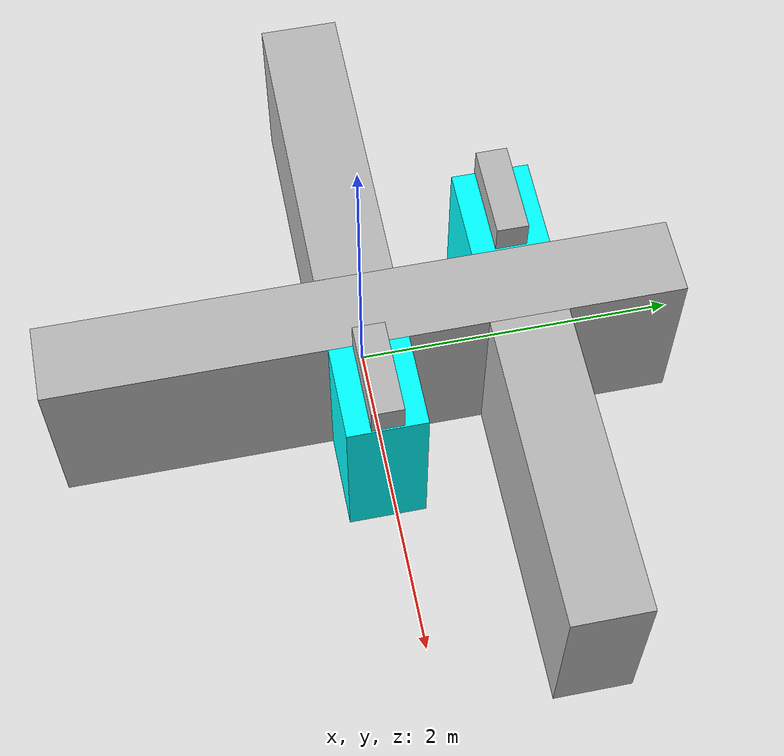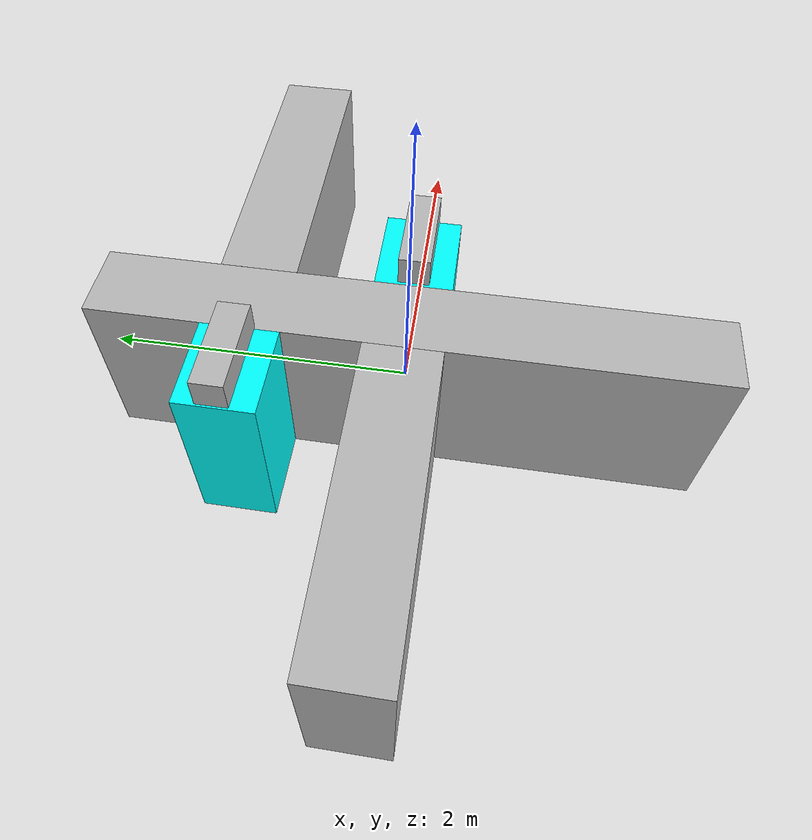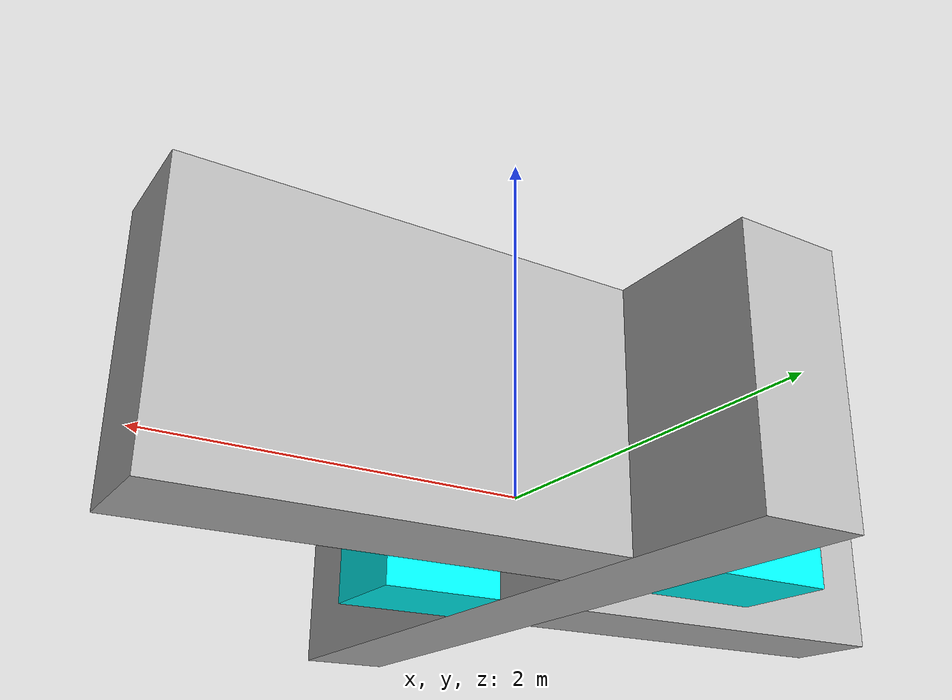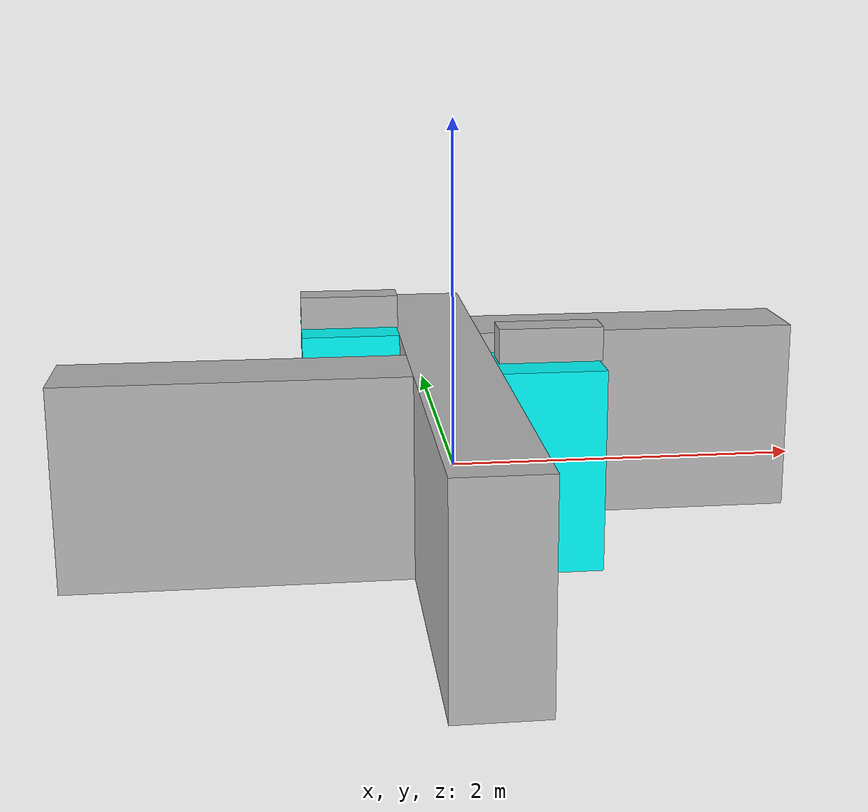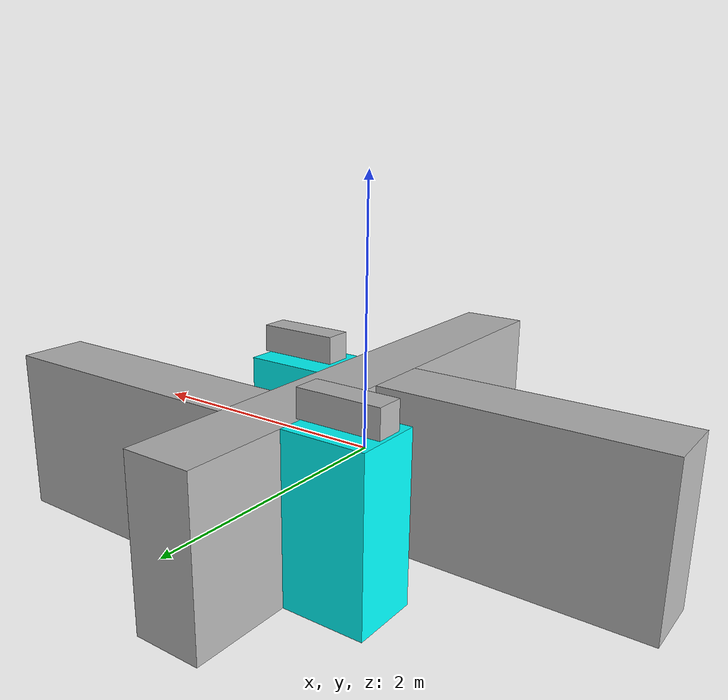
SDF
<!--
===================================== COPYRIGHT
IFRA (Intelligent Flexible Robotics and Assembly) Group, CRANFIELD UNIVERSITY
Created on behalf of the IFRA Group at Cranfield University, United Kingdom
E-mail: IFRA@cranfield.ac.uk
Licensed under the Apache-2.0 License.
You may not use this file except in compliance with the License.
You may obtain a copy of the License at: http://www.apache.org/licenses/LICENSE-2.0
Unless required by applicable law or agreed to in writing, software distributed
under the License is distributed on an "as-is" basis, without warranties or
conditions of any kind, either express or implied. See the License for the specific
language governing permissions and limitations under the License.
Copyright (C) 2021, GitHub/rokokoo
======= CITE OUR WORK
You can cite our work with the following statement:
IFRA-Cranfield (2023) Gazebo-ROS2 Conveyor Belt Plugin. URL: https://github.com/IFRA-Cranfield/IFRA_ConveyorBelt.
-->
<?xml version="1.0" ?>

<sdf version="1.4">

    <model name="conveyor_belt">
        <model name="conveyorbelt_fixed">

            <static>true</static>
            <link name="belt_visual">
                <inertial>
                    <mass>100.0</mass>
                    <inertia>                        <!-- inertias are tricky to compute -->
                        <!-- http://gazebosim.org/tutorials?tut=inertia&cat=build_robot -->
                        <ixx>45.152</ixx>                        <!-- for a box: ixx = 0.083 * mass * (y*y + z*z) -->
                        <ixy>0.0</ixy>                        <!-- for a box: ixy = 0 -->
                        <ixz>0.0</ixz>                        <!-- for a box: ixz = 0 -->
                        <iyy>14.027</iyy>                        <!-- for a box: iyy = 0.083 * mass * (x*x + z*z) -->
                        <iyz>0.0</iyz>                        <!-- for a box: iyz = 0 -->
                        <izz>35.275</izz>                        <!-- for a box: izz = 0.083 * mass * (x*x + y*y) -->
                    </inertia>
                </inertial>
                <collision name="collision">
                    <geometry>
                        <box>
                            <size>0.5 4 1.2</size>
                        </box>
                    </geometry>
                </collision>
                <visual name="visual">
                    <geometry>
                        <box>
                            <size>0.5 4 1.2</size>
                        </box>
                    </geometry>
                </visual>
            </link>

            <link name="belt_left_visual">
            <pose>-1.25 0 0 0 0 1.57</pose>
                <inertial>
                    <mass>100.0</mass>
                    <inertia>                        <!-- inertias are tricky to compute -->
                        <!-- http://gazebosim.org/tutorials?tut=inertia&cat=build_robot -->
                        <ixx>45.152</ixx>                        <!-- for a box: ixx = 0.083 * mass * (y*y + z*z) -->
                        <ixy>0.0</ixy>                        <!-- for a box: ixy = 0 -->
                        <ixz>0.0</ixz>                        <!-- for a box: ixz = 0 -->
                        <iyy>14.027</iyy>                        <!-- for a box: iyy = 0.083 * mass * (x*x + z*z) -->
                        <iyz>0.0</iyz>                        <!-- for a box: iyz = 0 -->
                        <izz>35.275</izz>                        <!-- for a box: izz = 0.083 * mass * (x*x + y*y) -->
                    </inertia>
                </inertial>
                <collision name="collision">
                    <geometry>
                        <box>
                            <size>0.5 2 1.2</size>
                        </box>
                    </geometry>
                </collision>
                <visual name="visual">
                    <geometry>
                        <box>
                            <size>0.5 2 1.2</size>
                        </box>
                    </geometry>
                </visual>
            </link>

            <link name="belt_right_visual">
            <pose>1.25 1 0 0 0 1.57</pose>
                <inertial>
                    <mass>100.0</mass>
                    <inertia>                        <!-- inertias are tricky to compute -->
                        <!-- http://gazebosim.org/tutorials?tut=inertia&cat=build_robot -->
                        <ixx>45.152</ixx>                        <!-- for a box: ixx = 0.083 * mass * (y*y + z*z) -->
                        <ixy>0.0</ixy>                        <!-- for a box: ixy = 0 -->
                        <ixz>0.0</ixz>                        <!-- for a box: ixz = 0 -->
                        <iyy>14.027</iyy>                        <!-- for a box: iyy = 0.083 * mass * (x*x + z*z) -->
                        <iyz>0.0</iyz>                        <!-- for a box: iyz = 0 -->
                        <izz>35.275</izz>                        <!-- for a box: izz = 0.083 * mass * (x*x + y*y) -->
                    </inertia>
                </inertial>
                <collision name="collision">
                    <geometry>
                        <box>
                            <size>0.5 2 1.2</size>
                        </box>
                    </geometry>
                </collision>
                <visual name="visual">
                    <geometry>
                        <box>
                            <size>0.5 2 1.2</size>
                        </box>
                    </geometry>
                </visual>
            </link>
        </model>

        <model name="belt_changer">
            <static>true</static>
            <link name="belt_changer_left">
            <pose>0.55 0 0 0 0 0</pose>
                <inertial>
                    <mass>100.0</mass>
                    <inertia>                        <!-- inertias are tricky to compute -->
                        <!-- http://gazebosim.org/tutorials?tut=inertia&cat=build_robot -->
                        <ixx>0</ixx>                        <!-- for a box: ixx = 0.083 * mass * (y*y + z*z) -->
                        <ixy>0.0</ixy>                        <!-- for a box: ixy = 0 -->
                        <ixz>0.0</ixz>                        <!-- for a box: ixz = 0 -->
                        <iyy>0</iyy>                        <!-- for a box: iyy = 0.083 * mass * (x*x + z*z) -->
                        <iyz>0.0</iyz>                        <!-- for a box: iyz = 0 -->
                        <izz>0</izz>                        <!-- for a box: izz = 0.083 * mass * (x*x + y*y) -->
                    </inertia>
                </inertial>
                <collision name="collision">
                    <geometry>
                        <box>
                            <size>0.6 0.5 1.2</size>
                        </box>
                    </geometry>
                </collision>
                <visual name="visual">
                    <geometry>
                        <box>
                            <size>0.6 0.5 1.2</size>
                        </box>
                    </geometry>
                    <material>
                        <ambient>0 0 0 0</ambient>
                        <diffuse>0 1 1 1</diffuse>
                        <specular>0.3 0.3 0.2 64</specular>
                        <emissive>0.1 0 0.1 1</emissive>
                    </material>
                </visual>
            </link>

            <link name="belt_changer_right">
            <pose>-0.55 1 0 0 0 0</pose>
                <inertial>
                    <mass>100.0</mass>
                    <inertia>                        <!-- inertias are tricky to compute -->
                        <!-- http://gazebosim.org/tutorials?tut=inertia&cat=build_robot -->
                        <ixx>0</ixx>                        <!-- for a box: ixx = 0.083 * mass * (y*y + z*z) -->
                        <ixy>0.0</ixy>                        <!-- for a box: ixy = 0 -->
                        <ixz>0.0</ixz>                        <!-- for a box: ixz = 0 -->
                        <iyy>0</iyy>                        <!-- for a box: iyy = 0.083 * mass * (x*x + z*z) -->
                        <iyz>0.0</iyz>                        <!-- for a box: iyz = 0 -->
                        <izz>0</izz>                        <!-- for a box: izz = 0.083 * mass * (x*x + y*y) -->
                    </inertia>
                </inertial>
                <collision name="collision">
                    <geometry>
                        <box>
                            <size>0.6 0.5 1.2</size>
                        </box>
                    </geometry>
                </collision>
                <visual name="visual">
                    <geometry>
                        <box>
                            <size>0.6 0.5 1.2</size>
                        </box>
                    </geometry>
                    <material>
                        <ambient>0 0 0 0</ambient>
                        <diffuse>0 1 1 1</diffuse>
                        <specular>0.3 0.3 0.2 64</specular>
                        <emissive>0.1 0 0.1 1</emissive>
                    </material>
                </visual>
            </link>
        </model>

        <model name="belt_changer_moving">

            <allow_auto_disable>0</allow_auto_disable>
            <static>false</static>

            <link name="belt_changer_left_moving">
            <pose>0.55 0 0.72 0 0 0</pose>
                <inertial>
                    <mass>100.0</mass>
                    <inertia>
                        <ixx>0.0</ixx>
                        <ixy>0.0</ixy>
                        <ixz>0.0</ixz>
                        <iyy>0.0</iyy>
                        <iyz>0.0</iyz>
                        <izz>0.0</izz>
                    </inertia>
                </inertial>
                <collision name="belt_collision">
                    <geometry>
                        <box>
                            <size>0.6 0.2 0.2</size>
                        </box>
                    </geometry>
                    <surface>
                        <friction>
                            <ode>
                                <mu>100.0</mu>
                                <mu2>100.0</mu2>
                            </ode>
                            <torsional>
                                <coefficient>1000.0</coefficient>
                                <patch_radius>0.1</patch_radius>
                            </torsional>
                        </friction>
                    </surface>
                </collision>

                <visual name="belt_left_visual">
                    <geometry>
                        <box>
                            <size>0.6 0.2 0.2</size>
                        </box>
                    </geometry>
                </visual>

            </link>

            <link name="belt_changer_right_moving">
            <pose>-0.55 1 0.72 0 0 0</pose>
                <inertial>
                    <mass>100.0</mass>
                    <inertia>
                        <ixx>0.0</ixx>
                        <ixy>0.0</ixy>
                        <ixz>0.0</ixz>
                        <iyy>0.0</iyy>
                        <iyz>0.0</iyz>
                        <izz>0.0</izz>
                    </inertia>
                </inertial>
                <collision name="belt_collision">
                    <geometry>
                        <box>
                            <size>0.6 0.2 0.2</size>
                        </box>
                    </geometry>
                    <surface>
                        <friction>
                            <ode>
                                <mu>100.0</mu>
                                <mu2>100.0</mu2>
                            </ode>
                            <torsional>
                                <coefficient>1000.0</coefficient>
                                <patch_radius>0.1</patch_radius>
                            </torsional>
                        </friction>
                    </surface>
                </collision>

                <visual name="belt_right_visual">
                    <geometry>
                        <box>
                            <size>0.6 0.2 0.2</size>
                        </box>
                    </geometry>
                </visual>

            </link>

        </model>

        <model name="conveyorbelt_moving">

            <allow_auto_disable>0</allow_auto_disable>
            <static>false</static>

            <link name="belt_moving">
            <pose>0 0 0.61 0 0 0.0</pose>
                <inertial>
                    <mass>100.0</mass>
                    <inertia>
                        <ixx>0.0</ixx>
                        <ixy>0.0</ixy>
                        <ixz>0.0</ixz>
                        <iyy>0.0</iyy>
                        <iyz>0.0</iyz>
                        <izz>0.0</izz>
                    </inertia>
                </inertial>
                <collision name="belt_collision">
                    <geometry>
                        <box>
                            <size>0.425 4 0.00001</size>
                        </box>
                    </geometry>
                    <surface>
                        <friction>
                            <ode>
                                <mu>1.0</mu>
                                <mu2>1.0</mu2>
                            </ode>
                            <torsional>
                                <coefficient>1000.0</coefficient>
                                <patch_radius>0.1</patch_radius>
                            </torsional>
                        </friction>
                    </surface>
                </collision>

            </link>

            <link name="belt_left_moving">
            <pose>-1.25 0 0.61 0 0 1.57</pose>
                <inertial>
                    <mass>100.0</mass>
                    <inertia>
                        <ixx>0.0</ixx>
                        <ixy>0.0</ixy>
                        <ixz>0.0</ixz>
                        <iyy>0.0</iyy>
                        <iyz>0.0</iyz>
                        <izz>0.0</izz>
                    </inertia>
                </inertial>
                <collision name="belt_collision">
                    <geometry>
                        <box>
                            <size>0.425 2 0.00001</size>
                        </box>
                    </geometry>
                    <surface>
                        <friction>
                            <ode>
                                <mu>1.0</mu>
                                <mu2>1.0</mu2>
                            </ode>
                            <torsional>
                                <coefficient>1000.0</coefficient>
                                <patch_radius>0.1</patch_radius>
                            </torsional>
                        </friction>
                    </surface>
                </collision>

            </link>

            <link name="belt_right_moving">
            <pose>1.25 1 0.61 0 0 1.57</pose>
                <inertial>
                    <mass>100.0</mass>
                    <inertia>
                        <ixx>0.0</ixx>
                        <ixy>0.0</ixy>
                        <ixz>0.0</ixz>
                        <iyy>0.0</iyy>
                        <iyz>0.0</iyz>
                        <izz>0.0</izz>
                    </inertia>
                </inertial>
                <collision name="belt_collision">
                    <geometry>
                        <box>
                            <size>0.425 2 0.00001</size>
                        </box>
                    </geometry>
                    <surface>
                        <friction>
                            <ode>
                                <mu>1.0</mu>
                                <mu2>1.0</mu2>
                            </ode>
                            <torsional>
                                <coefficient>1000.0</coefficient>
                                <patch_radius>0.1</patch_radius>
                            </torsional>
                        </friction>
                    </surface>
                </collision>

            </link>

        </model>

        <joint name="belt_changer_left_joint" type="prismatic">
            <parent>belt_changer::belt_changer_left</parent>
            <child>belt_changer_moving::belt_changer_left_moving</child>
            <axis>
                <xyz>-1 0 0</xyz>
                <limit>
                    <lower>0.0</lower>
                    <upper>0.5</upper>
                </limit>
            </axis>
        </joint>

        <joint name="belt_changer_right_joint" type="prismatic">
            <parent>belt_changer::belt_changer_right</parent>
            <child>belt_changer_moving::belt_changer_right_moving</child>
            <axis>
                <xyz>1 0 0</xyz>
                <limit>
                    <lower>0.0</lower>
                    <upper>0.5</upper>
                </limit>
            </axis>
        </joint>

        <joint name="belt_joint" type="prismatic">
            <parent>conveyorbelt_fixed::belt_visual</parent>
            <child>conveyorbelt_moving::belt_moving</child>
            <axis>
                <xyz>0 1 0</xyz>
                <limit>
                    <lower>0.0</lower>
                    <upper>0.02</upper>
                </limit>
            </axis>
        </joint>

        <joint name="belt_left_joint" type="prismatic">
            <parent>conveyorbelt_fixed::belt_left_visual</parent>
            <child>conveyorbelt_moving::belt_left_moving</child>
            <axis>
                <xyz>-1 0 0</xyz>
                <limit>
                    <lower>0.0</lower>
                    <upper>0.01</upper>
                </limit>
            </axis>
        </joint>

        <joint name="belt_right_joint" type="prismatic">
            <parent>conveyorbelt_fixed::belt_right_visual</parent>
            <child>conveyorbelt_moving::belt_right_moving</child>
            <axis>
                <xyz>1 0 0</xyz>
                <limit>
                    <lower>0.0</lower>
                    <upper>0.01</upper>
                </limit>
            </axis>
        </joint>

        <plugin name="ros2_conveyorbelt_plugin" filename="libros2_conveyorbelt_plugin.so">
            <ros>
                <namespace></namespace>
            </ros>
            <max_velocity>1.0</max_velocity>
            <belt_changer_velocity>0.3</belt_changer_velocity>
            <publish_rate>1000</publish_rate>
        </plugin>

    </model>

</sdf>
